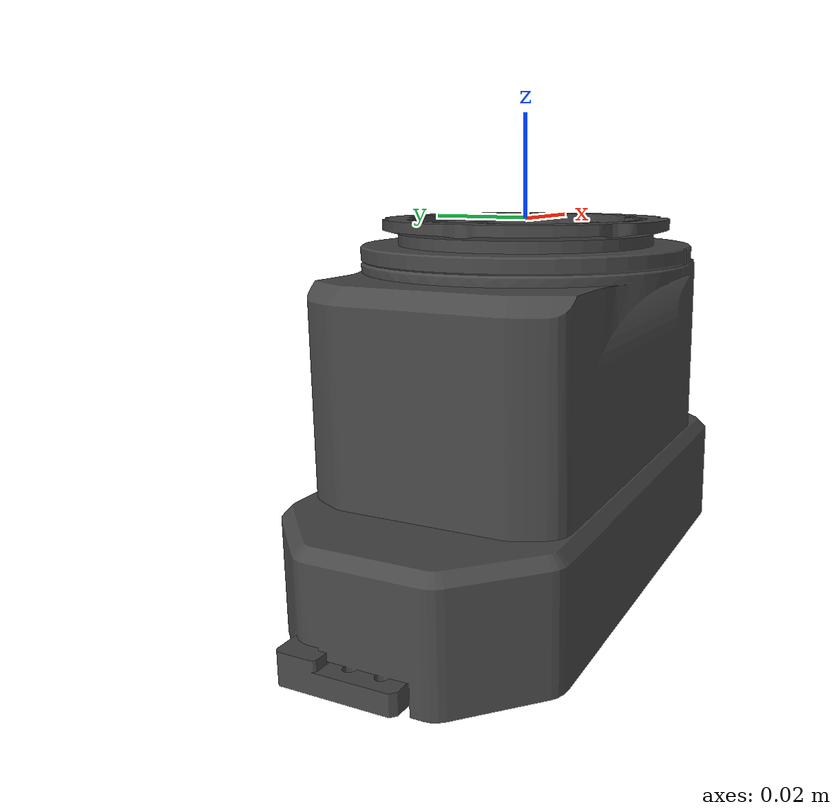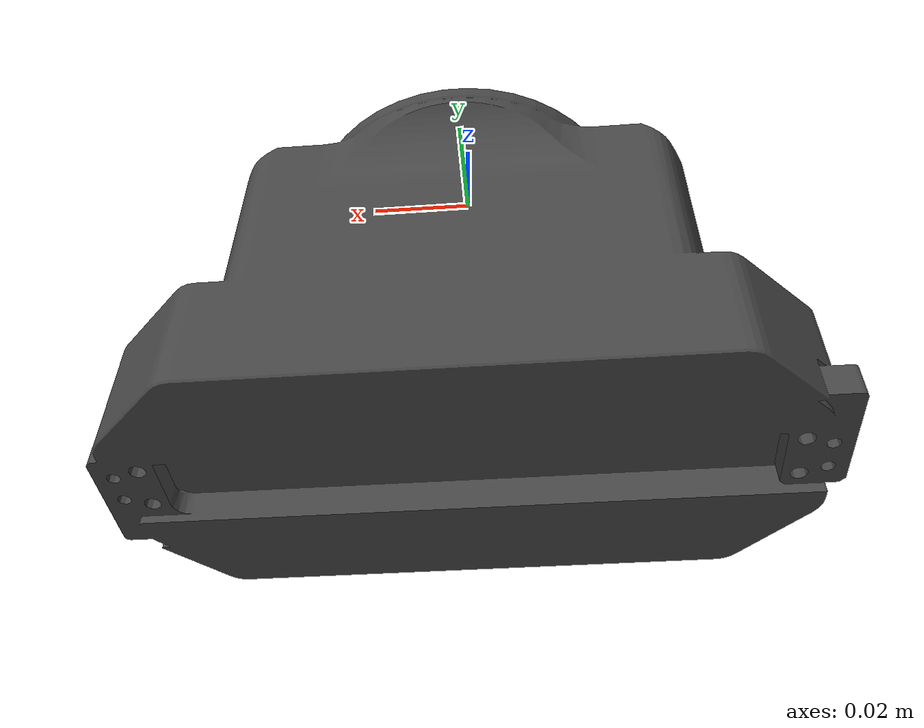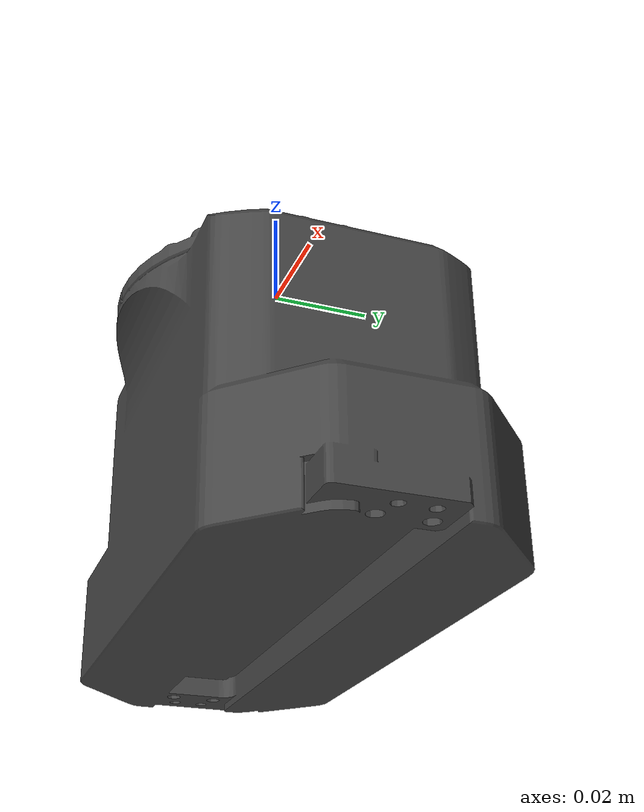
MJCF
<mujoco model="EE_BODY">
  <default>
    <default class="visual">
      <geom group="2" type="mesh" contype="0" conaffinity="0"/>
    </default>
    <default class="collision">
      <geom group="3" type="mesh"/>
    </default>
  </default>
  <asset>
    <material name="70,70,70" specular="1.0" shininess="0.2" rgba="0.274510 0.274510 0.274510 1.000000"/>
    <mesh file="EE_BODY.obj"/>
    <mesh file="EE_BODY_collision_0.obj"/>
    <mesh file="EE_BODY_collision_1.obj"/>
    <mesh file="EE_BODY_collision_2.obj"/>
    <mesh file="EE_BODY_collision_3.obj"/>
    <mesh file="EE_BODY_collision_4.obj"/>
    <mesh file="EE_BODY_collision_5.obj"/>
    <mesh file="EE_BODY_collision_6.obj"/>
    <mesh file="EE_BODY_collision_7.obj"/>
    <mesh file="EE_BODY_collision_8.obj"/>
    <mesh file="EE_BODY_collision_9.obj"/>
    <mesh file="EE_BODY_collision_10.obj"/>
    <mesh file="EE_BODY_collision_11.obj"/>
    <mesh file="EE_BODY_collision_12.obj"/>
    <mesh file="EE_BODY_collision_13.obj"/>
    <mesh file="EE_BODY_collision_14.obj"/>
    <mesh file="EE_BODY_collision_15.obj"/>
    <mesh file="EE_BODY_collision_16.obj"/>
    <mesh file="EE_BODY_collision_17.obj"/>
    <mesh file="EE_BODY_collision_18.obj"/>
    <mesh file="EE_BODY_collision_19.obj"/>
    <mesh file="EE_BODY_collision_20.obj"/>
    <mesh file="EE_BODY_collision_21.obj"/>
    <mesh file="EE_BODY_collision_22.obj"/>
    <mesh file="EE_BODY_collision_23.obj"/>
    <mesh file="EE_BODY_collision_24.obj"/>
  </asset>
  <worldbody>
    <body name="EE_BODY">
      <geom material="70,70,70" mesh="EE_BODY" class="visual"/>
      <geom mesh="EE_BODY_collision_0" rgba="0.19872458626329237 0.7020280535265702 0.4687759107846855 1" class="collision"/>
      <geom mesh="EE_BODY_collision_1" rgba="0.4299821024634016 0.8433236814838913 0.869572798081535 1" class="collision"/>
      <geom mesh="EE_BODY_collision_2" rgba="0.2759636242542163 0.779686641310863 0.4037494565505495 1" class="collision"/>
      <geom mesh="EE_BODY_collision_3" rgba="0.3514713126261486 0.33227946572615585 0.6566371378445023 1" class="collision"/>
      <geom mesh="EE_BODY_collision_4" rgba="0.012350085831651203 0.4179481581930822 0.19384756328473207 1" class="collision"/>
      <geom mesh="EE_BODY_collision_5" rgba="0.9315129507748202 0.6775468409129269 0.3643149913159107 1" class="collision"/>
      <geom mesh="EE_BODY_collision_6" rgba="0.10132361321660566 0.32084318403621503 0.21300973049296767 1" class="collision"/>
      <geom mesh="EE_BODY_collision_7" rgba="0.09350978554540446 0.7718147404524971 0.6383610958767384 1" class="collision"/>
      <geom mesh="EE_BODY_collision_8" rgba="0.7735257050138964 0.5886602589452398 0.4497633157773032 1" class="collision"/>
      <geom mesh="EE_BODY_collision_9" rgba="0.11496165617298693 0.17739962660600306 0.141290828140881 1" class="collision"/>
      <geom mesh="EE_BODY_collision_10" rgba="0.6598283558501722 0.7860365980588321 0.0756137082120022 1" class="collision"/>
      <geom mesh="EE_BODY_collision_11" rgba="0.1413063621715851 0.8925877480355677 0.3323715802220967 1" class="collision"/>
      <geom mesh="EE_BODY_collision_12" rgba="0.4819222001084035 0.543713560755687 0.3243037217071405 1" class="collision"/>
      <geom mesh="EE_BODY_collision_13" rgba="0.24501912682779592 0.23647662029527172 0.22170887495859337 1" class="collision"/>
      <geom mesh="EE_BODY_collision_14" rgba="0.925735341760109 0.1568957569364593 0.7597981509182633 1" class="collision"/>
      <geom mesh="EE_BODY_collision_15" rgba="0.7179935056905701 0.22196429513598281 0.2455308836185457 1" class="collision"/>
      <geom mesh="EE_BODY_collision_16" rgba="0.05850642530125061 0.16235770403713345 0.3044911340016516 1" class="collision"/>
      <geom mesh="EE_BODY_collision_17" rgba="0.14960841845822626 0.2704110327798759 0.31795009177633926 1" class="collision"/>
      <geom mesh="EE_BODY_collision_18" rgba="0.4614120312483899 0.6631207180634435 0.7405711124025625 1" class="collision"/>
      <geom mesh="EE_BODY_collision_19" rgba="0.6057437650444467 0.9312600215238248 0.8130022463504094 1" class="collision"/>
      <geom mesh="EE_BODY_collision_20" rgba="0.9839502694031007 0.32264454536538145 0.1298213145384931 1" class="collision"/>
      <geom mesh="EE_BODY_collision_21" rgba="0.826923874910731 0.5591480733971149 0.9614052855636152 1" class="collision"/>
      <geom mesh="EE_BODY_collision_22" rgba="0.8857767643892488 0.2465609327795899 0.7844297406977029 1" class="collision"/>
      <geom mesh="EE_BODY_collision_23" rgba="0.5557765255128088 0.5958212293962009 0.7977332463802028 1" class="collision"/>
      <geom mesh="EE_BODY_collision_24" rgba="0.5828441586988163 0.22929686592191856 0.4721728682210139 1" class="collision"/>
    </body>
  </worldbody>
</mujoco>
